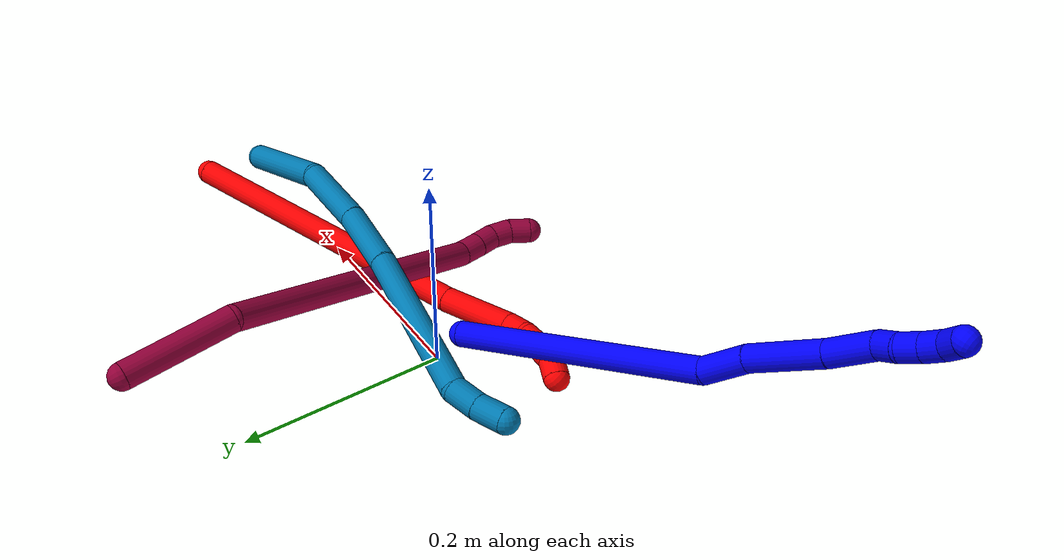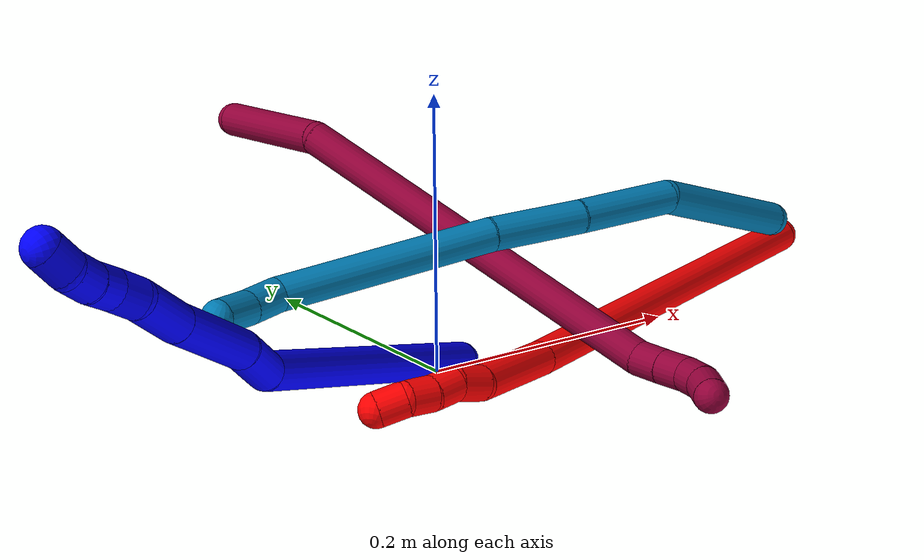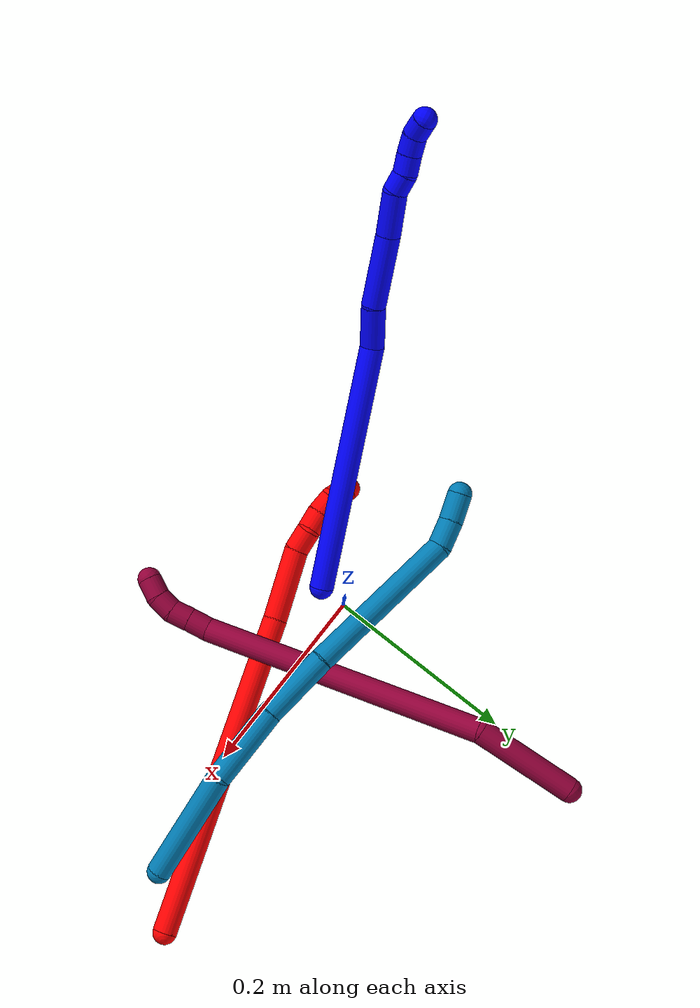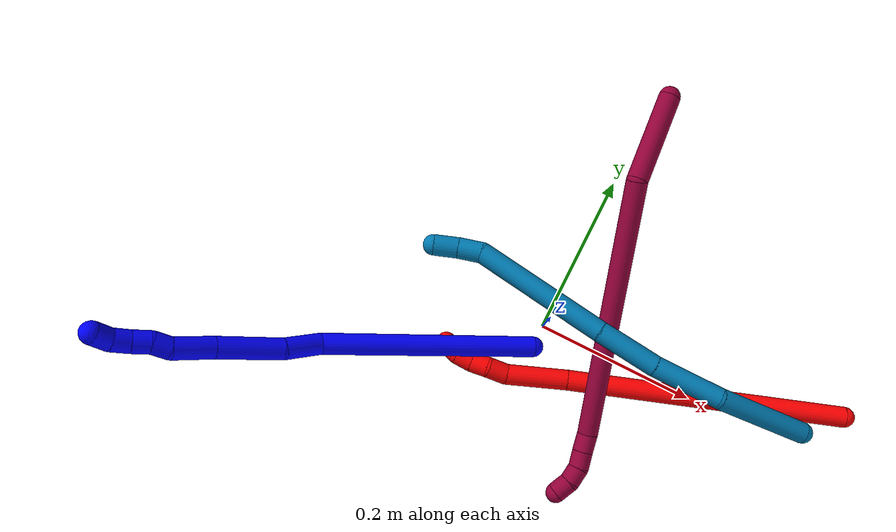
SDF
<sdf version="1.7">
 <world name="default">
  <model name="1">
   <static>0</static>
   <link name="1">
    <collision name="collision-cylinder-e_1_1_4">
     <pose>-0.043396 -0.037491 0.113755 0.318365 -0.347603 -0.056358</pose>
     <geometry><cylinder><radius>0.0125</radius><length>0.254785</length></cylinder></geometry>
     <surface>
      <friction><ode><mu>1.16</mu><mu2>1.16</mu2><slip1>0</slip1><slip2>0</slip2></ode></friction>
      <contact><ode><kp>1e+06</kp><kd>1</kd><max_vel>0</max_vel><min_depth>0.001</min_depth></ode></contact>
     </surface>
    </collision>
    <visual name="visual-cylinder-e_1_1_4">
     <pose>-0.043396 -0.037491 0.113755 0.318365 -0.347603 -0.056358</pose>
     <geometry><cylinder><radius>0.0125</radius><length>0.254785</length></cylinder></geometry>
     <material><ambient>0 0 1 1</ambient></material>
    </visual>
    <collision name="collision-cylinder-e_2_4_5">
     <pose>-0.098394 -0.08703 0.242344 0.682124 -0.545625 -0.197963</pose>
     <geometry><cylinder><radius>0.0125</radius><length>0.044715</length></cylinder></geometry>
     <surface>
      <friction><ode><mu>1.16</mu><mu2>1.16</mu2><slip1>0</slip1><slip2>0</slip2></ode></friction>
      <contact><ode><kp>1e+06</kp><kd>1</kd><max_vel>0</max_vel><min_depth>0.001</min_depth></ode></contact>
     </surface>
    </collision>
    <visual name="visual-cylinder-e_2_4_5">
     <pose>-0.098394 -0.08703 0.242344 0.682124 -0.545625 -0.197963</pose>
     <geometry><cylinder><radius>0.0125</radius><length>0.044715</length></cylinder></geometry>
     <material><ambient>0 0 1 1</ambient></material>
    </visual>
    <collision name="collision-cylinder-e_3_5_6">
     <pose>-0.123895 -0.117638 0.286466 0.564817 -0.381238 -0.111864</pose>
     <geometry><cylinder><radius>0.0125</radius><length>0.074709</length></cylinder></geometry>
     <surface>
      <friction><ode><mu>1.16</mu><mu2>1.16</mu2><slip1>0</slip1><slip2>0</slip2></ode></friction>
      <contact><ode><kp>1e+06</kp><kd>1</kd><max_vel>0</max_vel><min_depth>0.001</min_depth></ode></contact>
     </surface>
    </collision>
    <visual name="visual-cylinder-e_3_5_6">
     <pose>-0.123895 -0.117638 0.286466 0.564817 -0.381238 -0.111864</pose>
     <geometry><cylinder><radius>0.0125</radius><length>0.074709</length></cylinder></geometry>
     <material><ambient>0 0 1 1</ambient></material>
    </visual>
    <collision name="collision-cylinder-e_4_6_7">
     <pose>-0.147312 -0.148672 0.332248 0.647571 -0.431364 -0.146787</pose>
     <geometry><cylinder><radius>0.0125</radius><length>0.045533</length></cylinder></geometry>
     <surface>
      <friction><ode><mu>1.16</mu><mu2>1.16</mu2><slip1>0</slip1><slip2>0</slip2></ode></friction>
      <contact><ode><kp>1e+06</kp><kd>1</kd><max_vel>0</max_vel><min_depth>0.001</min_depth></ode></contact>
     </surface>
    </collision>
    <visual name="visual-cylinder-e_4_6_7">
     <pose>-0.147312 -0.148672 0.332248 0.647571 -0.431364 -0.146787</pose>
     <geometry><cylinder><radius>0.0125</radius><length>0.045533</length></cylinder></geometry>
     <material><ambient>0 0 1 1</ambient></material>
    </visual>
    <collision name="collision-cylinder-e_5_7_8">
     <pose>-0.157673 -0.166977 0.35689 0.621025 -0.083897 -0.026936</pose>
     <geometry><cylinder><radius>0.0125</radius><length>0.020108</length></cylinder></geometry>
     <surface>
      <friction><ode><mu>1.16</mu><mu2>1.16</mu2><slip1>0</slip1><slip2>0</slip2></ode></friction>
      <contact><ode><kp>1e+06</kp><kd>1</kd><max_vel>0</max_vel><min_depth>0.001</min_depth></ode></contact>
     </surface>
    </collision>
    <visual name="visual-cylinder-e_5_7_8">
     <pose>-0.157673 -0.166977 0.35689 0.621025 -0.083897 -0.026936</pose>
     <geometry><cylinder><radius>0.0125</radius><length>0.020108</length></cylinder></geometry>
     <material><ambient>0 0 1 1</ambient></material>
    </visual>
    <collision name="collision-cylinder-e_6_8_9">
     <pose>-0.16207 -0.177378 0.373217 0.509609 -0.362563 -0.095411</pose>
     <geometry><cylinder><radius>0.0125</radius><length>0.020044</length></cylinder></geometry>
     <surface>
      <friction><ode><mu>1.16</mu><mu2>1.16</mu2><slip1>0</slip1><slip2>0</slip2></ode></friction>
      <contact><ode><kp>1e+06</kp><kd>1</kd><max_vel>0</max_vel><min_depth>0.001</min_depth></ode></contact>
     </surface>
    </collision>
    <visual name="visual-cylinder-e_6_8_9">
     <pose>-0.16207 -0.177378 0.373217 0.509609 -0.362563 -0.095411</pose>
     <geometry><cylinder><radius>0.0125</radius><length>0.020044</length></cylinder></geometry>
     <material><ambient>0 0 1 1</ambient></material>
    </visual>
    <collision name="collision-cylinder-e_7_9_10">
     <pose>-0.168773 -0.187836 0.388905 0.664906 -0.318772 -0.110889</pose>
     <geometry><cylinder><radius>0.0125</radius><length>0.020093</length></cylinder></geometry>
     <surface>
      <friction><ode><mu>1.16</mu><mu2>1.16</mu2><slip1>0</slip1><slip2>0</slip2></ode></friction>
      <contact><ode><kp>1e+06</kp><kd>1</kd><max_vel>0</max_vel><min_depth>0.001</min_depth></ode></contact>
     </surface>
    </collision>
    <visual name="visual-cylinder-e_7_9_10">
     <pose>-0.168773 -0.187836 0.388905 0.664906 -0.318772 -0.110889</pose>
     <geometry><cylinder><radius>0.0125</radius><length>0.020093</length></cylinder></geometry>
     <material><ambient>0 0 1 1</ambient></material>
    </visual>
    <collision name="collision-cylinder-e_8_10_2">
     <pose>-0.17269 -0.201858 0.402188 0.953504 -0.076852 -0.039708</pose>
     <geometry><cylinder><radius>0.0125</radius><length>0.020014</length></cylinder></geometry>
     <surface>
      <friction><ode><mu>1.16</mu><mu2>1.16</mu2><slip1>0</slip1><slip2>0</slip2></ode></friction>
      <contact><ode><kp>1e+06</kp><kd>1</kd><max_vel>0</max_vel><min_depth>0.001</min_depth></ode></contact>
     </surface>
    </collision>
    <visual name="visual-cylinder-e_8_10_2">
     <pose>-0.17269 -0.201858 0.402188 0.953504 -0.076852 -0.039708</pose>
     <geometry><cylinder><radius>0.0125</radius><length>0.020014</length></cylinder></geometry>
     <material><ambient>0 0 1 1</ambient></material>
    </visual>
    <collision name="collision-sphere-2">
     <pose>-0.173458 -0.209994 0.407964 0 -0 0</pose>
     <geometry><sphere><radius>0.0125</radius></sphere></geometry>
     <surface>
      <friction><ode><mu>1.16</mu><mu2>1.16</mu2><slip1>0</slip1><slip2>0</slip2></ode></friction>
      <contact><ode><kp>1e+06</kp><kd>1</kd><max_vel>0</max_vel><min_depth>0.001</min_depth></ode></contact>
     </surface>
    </collision>
    <visual name="visual-sphere-2">
     <pose>-0.173458 -0.209994 0.407964 0 -0 0</pose>
     <geometry><sphere><radius>0.0125</radius></sphere></geometry>
     <material><ambient>0 0 1 1</ambient></material>
    </visual>
    <collision name="collision-sphere-10">
     <pose>-0.171922 -0.193722 0.396413 0 -0 0</pose>
     <geometry><sphere><radius>0.0125</radius></sphere></geometry>
     <surface>
      <friction><ode><mu>1.16</mu><mu2>1.16</mu2><slip1>0</slip1><slip2>0</slip2></ode></friction>
      <contact><ode><kp>1e+06</kp><kd>1</kd><max_vel>0</max_vel><min_depth>0.001</min_depth></ode></contact>
     </surface>
    </collision>
    <visual name="visual-sphere-10">
     <pose>-0.171922 -0.193722 0.396413 0 -0 0</pose>
     <geometry><sphere><radius>0.0125</radius></sphere></geometry>
     <material><ambient>0 0 1 1</ambient></material>
    </visual>
    <collision name="collision-sphere-9">
     <pose>-0.165625 -0.181949 0.381397 0 -0 0</pose>
     <geometry><sphere><radius>0.0125</radius></sphere></geometry>
     <surface>
      <friction><ode><mu>1.16</mu><mu2>1.16</mu2><slip1>0</slip1><slip2>0</slip2></ode></friction>
      <contact><ode><kp>1e+06</kp><kd>1</kd><max_vel>0</max_vel><min_depth>0.001</min_depth></ode></contact>
     </surface>
    </collision>
    <visual name="visual-sphere-9">
     <pose>-0.165625 -0.181949 0.381397 0 -0 0</pose>
     <geometry><sphere><radius>0.0125</radius></sphere></geometry>
     <material><ambient>0 0 1 1</ambient></material>
    </visual>
    <collision name="collision-sphere-4">
     <pose>-0.086791 -0.074982 0.227509 0 -0 0</pose>
     <geometry><sphere><radius>0.0125</radius></sphere></geometry>
     <surface>
      <friction><ode><mu>1.16</mu><mu2>1.16</mu2><slip1>0</slip1><slip2>0</slip2></ode></friction>
      <contact><ode><kp>1e+06</kp><kd>1</kd><max_vel>0</max_vel><min_depth>0.001</min_depth></ode></contact>
     </surface>
    </collision>
    <visual name="visual-sphere-4">
     <pose>-0.086791 -0.074982 0.227509 0 -0 0</pose>
     <geometry><sphere><radius>0.0125</radius></sphere></geometry>
     <material><ambient>0 0 1 1</ambient></material>
    </visual>
    <collision name="collision-sphere-1">
     <geometry><sphere><radius>0.0125</radius></sphere></geometry>
     <surface>
      <friction><ode><mu>1.16</mu><mu2>1.16</mu2><slip1>0</slip1><slip2>0</slip2></ode></friction>
      <contact><ode><kp>1e+06</kp><kd>1</kd><max_vel>0</max_vel><min_depth>0.001</min_depth></ode></contact>
     </surface>
    </collision>
    <visual name="visual-sphere-1">
     <geometry><sphere><radius>0.0125</radius></sphere></geometry>
     <material><ambient>0 0 1 1</ambient></material>
    </visual>
    <collision name="collision-sphere-8">
     <pose>-0.158516 -0.172807 0.365038 0 -0 0</pose>
     <geometry><sphere><radius>0.0125</radius></sphere></geometry>
     <surface>
      <friction><ode><mu>1.16</mu><mu2>1.16</mu2><slip1>0</slip1><slip2>0</slip2></ode></friction>
      <contact><ode><kp>1e+06</kp><kd>1</kd><max_vel>0</max_vel><min_depth>0.001</min_depth></ode></contact>
     </surface>
    </collision>
    <visual name="visual-sphere-8">
     <pose>-0.158516 -0.172807 0.365038 0 -0 0</pose>
     <geometry><sphere><radius>0.0125</radius></sphere></geometry>
     <material><ambient>0 0 1 1</ambient></material>
    </visual>
    <collision name="collision-sphere-5">
     <pose>-0.109996 -0.099079 0.257179 0 -0 0</pose>
     <geometry><sphere><radius>0.0125</radius></sphere></geometry>
     <surface>
      <friction><ode><mu>1.16</mu><mu2>1.16</mu2><slip1>0</slip1><slip2>0</slip2></ode></friction>
      <contact><ode><kp>1e+06</kp><kd>1</kd><max_vel>0</max_vel><min_depth>0.001</min_depth></ode></contact>
     </surface>
    </collision>
    <visual name="visual-sphere-5">
     <pose>-0.109996 -0.099079 0.257179 0 -0 0</pose>
     <geometry><sphere><radius>0.0125</radius></sphere></geometry>
     <material><ambient>0 0 1 1</ambient></material>
    </visual>
    <collision name="collision-sphere-6">
     <pose>-0.137793 -0.136196 0.315754 0 -0 0</pose>
     <geometry><sphere><radius>0.0125</radius></sphere></geometry>
     <surface>
      <friction><ode><mu>1.16</mu><mu2>1.16</mu2><slip1>0</slip1><slip2>0</slip2></ode></friction>
      <contact><ode><kp>1e+06</kp><kd>1</kd><max_vel>0</max_vel><min_depth>0.001</min_depth></ode></contact>
     </surface>
    </collision>
    <visual name="visual-sphere-6">
     <pose>-0.137793 -0.136196 0.315754 0 -0 0</pose>
     <geometry><sphere><radius>0.0125</radius></sphere></geometry>
     <material><ambient>0 0 1 1</ambient></material>
    </visual>
    <collision name="collision-sphere-7">
     <pose>-0.156831 -0.161148 0.348742 0 -0 0</pose>
     <geometry><sphere><radius>0.0125</radius></sphere></geometry>
     <surface>
      <friction><ode><mu>1.16</mu><mu2>1.16</mu2><slip1>0</slip1><slip2>0</slip2></ode></friction>
      <contact><ode><kp>1e+06</kp><kd>1</kd><max_vel>0</max_vel><min_depth>0.001</min_depth></ode></contact>
     </surface>
    </collision>
    <visual name="visual-sphere-7">
     <pose>-0.156831 -0.161148 0.348742 0 -0 0</pose>
     <geometry><sphere><radius>0.0125</radius></sphere></geometry>
     <material><ambient>0 0 1 1</ambient></material>
    </visual>
    <inertial>
     <pose>-0.089372 -0.087457 0.213739 0 -0 0</pose>
     <mass>0.5</mass>
     <inertia><ixx>0.001266</ixx><ixy>0</ixy><ixz>0</ixz><iyy>0.00128</iyy><iyz>0</iyz><izz>0.00097</izz></inertia>
    </inertial>
   </link>
   <pose>0.000179 -0.028524 0.017077 -1.68336 0.275795 1.73625</pose>
  </model>
  <model name="2">
   <static>0</static>
   <link name="2">
    <collision name="collision-cylinder-e_1_1_4">
     <pose>-0.118932 -0.030926 -0.116612 2.88236 -0.778257 -2.52601</pose>
     <geometry><cylinder><radius>0.0125</radius><length>0.338819</length></cylinder></geometry>
     <surface>
      <friction><ode><mu>1.16</mu><mu2>1.16</mu2><slip1>0</slip1><slip2>0</slip2></ode></friction>
      <contact><ode><kp>1e+06</kp><kd>1</kd><max_vel>0</max_vel><min_depth>0.001</min_depth></ode></contact>
     </surface>
    </collision>
    <visual name="visual-cylinder-e_1_1_4">
     <pose>-0.118932 -0.030926 -0.116612 2.88236 -0.778257 -2.52601</pose>
     <geometry><cylinder><radius>0.0125</radius><length>0.338819</length></cylinder></geometry>
     <material><ambient>1 0 0 1</ambient></material>
    </visual>
    <collision name="collision-cylinder-e_2_4_5">
     <pose>-0.265172 -0.071281 -0.257255 2.76765 -0.813494 -2.31397</pose>
     <geometry><cylinder><radius>0.0125</radius><length>0.075159</length></cylinder></geometry>
     <surface>
      <friction><ode><mu>1.16</mu><mu2>1.16</mu2><slip1>0</slip1><slip2>0</slip2></ode></friction>
      <contact><ode><kp>1e+06</kp><kd>1</kd><max_vel>0</max_vel><min_depth>0.001</min_depth></ode></contact>
     </surface>
    </collision>
    <visual name="visual-cylinder-e_2_4_5">
     <pose>-0.265172 -0.071281 -0.257255 2.76765 -0.813494 -2.31397</pose>
     <geometry><cylinder><radius>0.0125</radius><length>0.075159</length></cylinder></geometry>
     <material><ambient>1 0 0 1</ambient></material>
    </visual>
    <collision name="collision-cylinder-e_3_5_6">
     <pose>-0.303355 -0.081715 -0.286596 2.9548 -1.10964 -2.84158</pose>
     <geometry><cylinder><radius>0.0125</radius><length>0.024284</length></cylinder></geometry>
     <surface>
      <friction><ode><mu>1.16</mu><mu2>1.16</mu2><slip1>0</slip1><slip2>0</slip2></ode></friction>
      <contact><ode><kp>1e+06</kp><kd>1</kd><max_vel>0</max_vel><min_depth>0.001</min_depth></ode></contact>
     </surface>
    </collision>
    <visual name="visual-cylinder-e_3_5_6">
     <pose>-0.303355 -0.081715 -0.286596 2.9548 -1.10964 -2.84158</pose>
     <geometry><cylinder><radius>0.0125</radius><length>0.024284</length></cylinder></geometry>
     <material><ambient>1 0 0 1</ambient></material>
    </visual>
    <collision name="collision-cylinder-e_4_6_7">
     <pose>-0.321776 -0.082399 -0.298985 -3.09657 -0.81689 3.03763</pose>
     <geometry><cylinder><radius>0.0125</radius><length>0.020707</length></cylinder></geometry>
     <surface>
      <friction><ode><mu>1.16</mu><mu2>1.16</mu2><slip1>0</slip1><slip2>0</slip2></ode></friction>
      <contact><ode><kp>1e+06</kp><kd>1</kd><max_vel>0</max_vel><min_depth>0.001</min_depth></ode></contact>
     </surface>
    </collision>
    <visual name="visual-cylinder-e_4_6_7">
     <pose>-0.321776 -0.082399 -0.298985 -3.09657 -0.81689 3.03763</pose>
     <geometry><cylinder><radius>0.0125</radius><length>0.020707</length></cylinder></geometry>
     <material><ambient>1 0 0 1</ambient></material>
    </visual>
    <collision name="collision-cylinder-e_5_7_8">
     <pose>-0.337755 -0.080874 -0.31151 -2.92357 -0.986304 2.73981</pose>
     <geometry><cylinder><radius>0.0125</radius><length>0.020218</length></cylinder></geometry>
     <surface>
      <friction><ode><mu>1.16</mu><mu2>1.16</mu2><slip1>0</slip1><slip2>0</slip2></ode></friction>
      <contact><ode><kp>1e+06</kp><kd>1</kd><max_vel>0</max_vel><min_depth>0.001</min_depth></ode></contact>
     </surface>
    </collision>
    <visual name="visual-cylinder-e_5_7_8">
     <pose>-0.337755 -0.080874 -0.31151 -2.92357 -0.986304 2.73981</pose>
     <geometry><cylinder><radius>0.0125</radius><length>0.020218</length></cylinder></geometry>
     <material><ambient>1 0 0 1</ambient></material>
    </visual>
    <collision name="collision-cylinder-e_6_8_2">
     <pose>-0.352913 -0.074376 -0.322876 -2.41225 -0.702916 1.53055</pose>
     <geometry><cylinder><radius>0.0125</radius><length>0.020814</length></cylinder></geometry>
     <surface>
      <friction><ode><mu>1.16</mu><mu2>1.16</mu2><slip1>0</slip1><slip2>0</slip2></ode></friction>
      <contact><ode><kp>1e+06</kp><kd>1</kd><max_vel>0</max_vel><min_depth>0.001</min_depth></ode></contact>
     </surface>
    </collision>
    <visual name="visual-cylinder-e_6_8_2">
     <pose>-0.352913 -0.074376 -0.322876 -2.41225 -0.702916 1.53055</pose>
     <geometry><cylinder><radius>0.0125</radius><length>0.020814</length></cylinder></geometry>
     <material><ambient>1 0 0 1</ambient></material>
    </visual>
    <collision name="collision-sphere-2">
     <pose>-0.359641 -0.069085 -0.328796 0 -0 0</pose>
     <geometry><sphere><radius>0.0125</radius></sphere></geometry>
     <surface>
      <friction><ode><mu>1.16</mu><mu2>1.16</mu2><slip1>0</slip1><slip2>0</slip2></ode></friction>
      <contact><ode><kp>1e+06</kp><kd>1</kd><max_vel>0</max_vel><min_depth>0.001</min_depth></ode></contact>
     </surface>
    </collision>
    <visual name="visual-sphere-2">
     <pose>-0.359641 -0.069085 -0.328796 0 -0 0</pose>
     <geometry><sphere><radius>0.0125</radius></sphere></geometry>
     <material><ambient>1 0 0 1</ambient></material>
    </visual>
    <collision name="collision-sphere-4">
     <pose>-0.237864 -0.061851 -0.233224 0 -0 0</pose>
     <geometry><sphere><radius>0.0125</radius></sphere></geometry>
     <surface>
      <friction><ode><mu>1.16</mu><mu2>1.16</mu2><slip1>0</slip1><slip2>0</slip2></ode></friction>
      <contact><ode><kp>1e+06</kp><kd>1</kd><max_vel>0</max_vel><min_depth>0.001</min_depth></ode></contact>
     </surface>
    </collision>
    <visual name="visual-sphere-4">
     <pose>-0.237864 -0.061851 -0.233224 0 -0 0</pose>
     <geometry><sphere><radius>0.0125</radius></sphere></geometry>
     <material><ambient>1 0 0 1</ambient></material>
    </visual>
    <collision name="collision-sphere-1">
     <geometry><sphere><radius>0.0125</radius></sphere></geometry>
     <surface>
      <friction><ode><mu>1.16</mu><mu2>1.16</mu2><slip1>0</slip1><slip2>0</slip2></ode></friction>
      <contact><ode><kp>1e+06</kp><kd>1</kd><max_vel>0</max_vel><min_depth>0.001</min_depth></ode></contact>
     </surface>
    </collision>
    <visual name="visual-sphere-1">
     <geometry><sphere><radius>0.0125</radius></sphere></geometry>
     <material><ambient>1 0 0 1</ambient></material>
    </visual>
    <collision name="collision-sphere-8">
     <pose>-0.346186 -0.079667 -0.316956 0 -0 0</pose>
     <geometry><sphere><radius>0.0125</radius></sphere></geometry>
     <surface>
      <friction><ode><mu>1.16</mu><mu2>1.16</mu2><slip1>0</slip1><slip2>0</slip2></ode></friction>
      <contact><ode><kp>1e+06</kp><kd>1</kd><max_vel>0</max_vel><min_depth>0.001</min_depth></ode></contact>
     </surface>
    </collision>
    <visual name="visual-sphere-8">
     <pose>-0.346186 -0.079667 -0.316956 0 -0 0</pose>
     <geometry><sphere><radius>0.0125</radius></sphere></geometry>
     <material><ambient>1 0 0 1</ambient></material>
    </visual>
    <collision name="collision-sphere-5">
     <pose>-0.292481 -0.080711 -0.281287 0 -0 0</pose>
     <geometry><sphere><radius>0.0125</radius></sphere></geometry>
     <surface>
      <friction><ode><mu>1.16</mu><mu2>1.16</mu2><slip1>0</slip1><slip2>0</slip2></ode></friction>
      <contact><ode><kp>1e+06</kp><kd>1</kd><max_vel>0</max_vel><min_depth>0.001</min_depth></ode></contact>
     </surface>
    </collision>
    <visual name="visual-sphere-5">
     <pose>-0.292481 -0.080711 -0.281287 0 -0 0</pose>
     <geometry><sphere><radius>0.0125</radius></sphere></geometry>
     <material><ambient>1 0 0 1</ambient></material>
    </visual>
    <collision name="collision-sphere-6">
     <pose>-0.314228 -0.082718 -0.291905 0 -0 0</pose>
     <geometry><sphere><radius>0.0125</radius></sphere></geometry>
     <surface>
      <friction><ode><mu>1.16</mu><mu2>1.16</mu2><slip1>0</slip1><slip2>0</slip2></ode></friction>
      <contact><ode><kp>1e+06</kp><kd>1</kd><max_vel>0</max_vel><min_depth>0.001</min_depth></ode></contact>
     </surface>
    </collision>
    <visual name="visual-sphere-6">
     <pose>-0.314228 -0.082718 -0.291905 0 -0 0</pose>
     <geometry><sphere><radius>0.0125</radius></sphere></geometry>
     <material><ambient>1 0 0 1</ambient></material>
    </visual>
    <collision name="collision-sphere-7">
     <pose>-0.329324 -0.08208 -0.306064 0 -0 0</pose>
     <geometry><sphere><radius>0.0125</radius></sphere></geometry>
     <surface>
      <friction><ode><mu>1.16</mu><mu2>1.16</mu2><slip1>0</slip1><slip2>0</slip2></ode></friction>
      <contact><ode><kp>1e+06</kp><kd>1</kd><max_vel>0</max_vel><min_depth>0.001</min_depth></ode></contact>
     </surface>
    </collision>
    <visual name="visual-sphere-7">
     <pose>-0.329324 -0.08208 -0.306064 0 -0 0</pose>
     <geometry><sphere><radius>0.0125</radius></sphere></geometry>
     <material><ambient>1 0 0 1</ambient></material>
    </visual>
    <inertial>
     <pose>-0.17686 -0.045419 -0.170029 0 -0 0</pose>
     <mass>0.5</mass>
     <inertia>
      <ixx>-0.003297</ixx>
      <ixy>0</ixy>
      <ixz>0</ixz>
      <iyy>0.001582</iyy>
      <iyz>0</iyz>
      <izz>0.002895</izz>
     </inertia>
    </inertial>
   </link>
   <pose>0.376282 0.063618 0.015888 -0.56895 0.585964 -0.222635</pose>
  </model>
  <model name="8">
   <static>0</static>
   <link name="8">
    <collision name="collision-cylinder-e_1_1_4">
     <pose>0.003605 -0.020676 -0.047669 2.73235 0.069266 0.330856</pose>
     <geometry><cylinder><radius>0.0125</radius><length>0.10417</length></cylinder></geometry>
     <surface>
      <friction><ode><mu>1.16</mu><mu2>1.16</mu2><slip1>0</slip1><slip2>0</slip2></ode></friction>
      <contact><ode><kp>1e+06</kp><kd>1</kd><max_vel>0</max_vel><min_depth>0.001</min_depth></ode></contact>
     </surface>
    </collision>
    <visual name="visual-cylinder-e_1_1_4">
     <pose>0.003605 -0.020676 -0.047669 2.73235 0.069266 0.330856</pose>
     <geometry><cylinder><radius>0.0125</radius><length>0.10417</length></cylinder></geometry>
     <material><ambient>0.584314 0 0.227451 1</ambient></material>
    </visual>
    <collision name="collision-cylinder-e_2_4_5">
     <pose>0.054404 -0.150887 -0.195565 2.31184 0.307771 0.677219</pose>
     <geometry><cylinder><radius>0.0125</radius><length>0.311582</length></cylinder></geometry>
     <surface>
      <friction><ode><mu>1.16</mu><mu2>1.16</mu2><slip1>0</slip1><slip2>0</slip2></ode></friction>
      <contact><ode><kp>1e+06</kp><kd>1</kd><max_vel>0</max_vel><min_depth>0.001</min_depth></ode></contact>
     </surface>
    </collision>
    <visual name="visual-cylinder-e_2_4_5">
     <pose>0.054404 -0.150887 -0.195565 2.31184 0.307771 0.677219</pose>
     <geometry><cylinder><radius>0.0125</radius><length>0.311582</length></cylinder></geometry>
     <material><ambient>0.584314 0 0.227451 1</ambient></material>
    </visual>
    <collision name="collision-cylinder-e_3_5_6">
     <pose>0.102768 -0.266317 -0.30547 2.59468 0.102827 0.362899</pose>
     <geometry><cylinder><radius>0.0125</radius><length>0.022786</length></cylinder></geometry>
     <surface>
      <friction><ode><mu>1.16</mu><mu2>1.16</mu2><slip1>0</slip1><slip2>0</slip2></ode></friction>
      <contact><ode><kp>1e+06</kp><kd>1</kd><max_vel>0</max_vel><min_depth>0.001</min_depth></ode></contact>
     </surface>
    </collision>
    <visual name="visual-cylinder-e_3_5_6">
     <pose>0.102768 -0.266317 -0.30547 2.59468 0.102827 0.362899</pose>
     <geometry><cylinder><radius>0.0125</radius><length>0.022786</length></cylinder></geometry>
     <material><ambient>0.584314 0 0.227451 1</ambient></material>
    </visual>
    <collision name="collision-cylinder-e_4_6_7">
     <pose>0.104748 -0.277762 -0.323795 2.57083 0.078742 0.266931</pose>
     <geometry><cylinder><radius>0.0125</radius><length>0.020611</length></cylinder></geometry>
     <surface>
      <friction><ode><mu>1.16</mu><mu2>1.16</mu2><slip1>0</slip1><slip2>0</slip2></ode></friction>
      <contact><ode><kp>1e+06</kp><kd>1</kd><max_vel>0</max_vel><min_depth>0.001</min_depth></ode></contact>
     </surface>
    </collision>
    <visual name="visual-cylinder-e_4_6_7">
     <pose>0.104748 -0.277762 -0.323795 2.57083 0.078742 0.266931</pose>
     <geometry><cylinder><radius>0.0125</radius><length>0.020611</length></cylinder></geometry>
     <material><ambient>0.584314 0 0.227451 1</ambient></material>
    </visual>
    <collision name="collision-cylinder-e_5_7_8">
     <pose>0.107713 -0.28577 -0.341898 2.88736 0.216916 1.41125</pose>
     <geometry><cylinder><radius>0.0125</radius><length>0.020013</length></cylinder></geometry>
     <surface>
      <friction><ode><mu>1.16</mu><mu2>1.16</mu2><slip1>0</slip1><slip2>0</slip2></ode></friction>
      <contact><ode><kp>1e+06</kp><kd>1</kd><max_vel>0</max_vel><min_depth>0.001</min_depth></ode></contact>
     </surface>
    </collision>
    <visual name="visual-cylinder-e_5_7_8">
     <pose>0.107713 -0.28577 -0.341898 2.88736 0.216916 1.41125</pose>
     <geometry><cylinder><radius>0.0125</radius><length>0.020013</length></cylinder></geometry>
     <material><ambient>0.584314 0 0.227451 1</ambient></material>
    </visual>
    <collision name="collision-cylinder-e_6_8_2">
     <pose>0.114242 -0.288195 -0.360812 -3.13815 0.433406 -3.12594</pose>
     <geometry><cylinder><radius>0.0125</radius><length>0.020838</length></cylinder></geometry>
     <surface>
      <friction><ode><mu>1.16</mu><mu2>1.16</mu2><slip1>0</slip1><slip2>0</slip2></ode></friction>
      <contact><ode><kp>1e+06</kp><kd>1</kd><max_vel>0</max_vel><min_depth>0.001</min_depth></ode></contact>
     </surface>
    </collision>
    <visual name="visual-cylinder-e_6_8_2">
     <pose>0.114242 -0.288195 -0.360812 -3.13815 0.433406 -3.12594</pose>
     <geometry><cylinder><radius>0.0125</radius><length>0.020838</length></cylinder></geometry>
     <material><ambient>0.584314 0 0.227451 1</ambient></material>
    </visual>
    <collision name="collision-sphere-2">
     <pose>0.118618 -0.288162 -0.370268 0 -0 0</pose>
     <geometry><sphere><radius>0.0125</radius></sphere></geometry>
     <surface>
      <friction><ode><mu>1.16</mu><mu2>1.16</mu2><slip1>0</slip1><slip2>0</slip2></ode></friction>
      <contact><ode><kp>1e+06</kp><kd>1</kd><max_vel>0</max_vel><min_depth>0.001</min_depth></ode></contact>
     </surface>
    </collision>
    <visual name="visual-sphere-2">
     <pose>0.118618 -0.288162 -0.370268 0 -0 0</pose>
     <geometry><sphere><radius>0.0125</radius></sphere></geometry>
     <material><ambient>0.584314 0 0.227451 1</ambient></material>
    </visual>
    <collision name="collision-sphere-4">
     <pose>0.00721 -0.041351 -0.095339 0 -0 0</pose>
     <geometry><sphere><radius>0.0125</radius></sphere></geometry>
     <surface>
      <friction><ode><mu>1.16</mu><mu2>1.16</mu2><slip1>0</slip1><slip2>0</slip2></ode></friction>
      <contact><ode><kp>1e+06</kp><kd>1</kd><max_vel>0</max_vel><min_depth>0.001</min_depth></ode></contact>
     </surface>
    </collision>
    <visual name="visual-sphere-4">
     <pose>0.00721 -0.041351 -0.095339 0 -0 0</pose>
     <geometry><sphere><radius>0.0125</radius></sphere></geometry>
     <material><ambient>0.584314 0 0.227451 1</ambient></material>
    </visual>
    <collision name="collision-sphere-1">
     <geometry><sphere><radius>0.0125</radius></sphere></geometry>
     <surface>
      <friction><ode><mu>1.16</mu><mu2>1.16</mu2><slip1>0</slip1><slip2>0</slip2></ode></friction>
      <contact><ode><kp>1e+06</kp><kd>1</kd><max_vel>0</max_vel><min_depth>0.001</min_depth></ode></contact>
     </surface>
    </collision>
    <visual name="visual-sphere-1">
     <geometry><sphere><radius>0.0125</radius></sphere></geometry>
     <material><ambient>0.584314 0 0.227451 1</ambient></material>
    </visual>
    <collision name="collision-sphere-8">
     <pose>0.109866 -0.288228 -0.351356 0 -0 0</pose>
     <geometry><sphere><radius>0.0125</radius></sphere></geometry>
     <surface>
      <friction><ode><mu>1.16</mu><mu2>1.16</mu2><slip1>0</slip1><slip2>0</slip2></ode></friction>
      <contact><ode><kp>1e+06</kp><kd>1</kd><max_vel>0</max_vel><min_depth>0.001</min_depth></ode></contact>
     </surface>
    </collision>
    <visual name="visual-sphere-8">
     <pose>0.109866 -0.288228 -0.351356 0 -0 0</pose>
     <geometry><sphere><radius>0.0125</radius></sphere></geometry>
     <material><ambient>0.584314 0 0.227451 1</ambient></material>
    </visual>
    <collision name="collision-sphere-5">
     <pose>0.101599 -0.260424 -0.295791 0 -0 0</pose>
     <geometry><sphere><radius>0.0125</radius></sphere></geometry>
     <surface>
      <friction><ode><mu>1.16</mu><mu2>1.16</mu2><slip1>0</slip1><slip2>0</slip2></ode></friction>
      <contact><ode><kp>1e+06</kp><kd>1</kd><max_vel>0</max_vel><min_depth>0.001</min_depth></ode></contact>
     </surface>
    </collision>
    <visual name="visual-sphere-5">
     <pose>0.101599 -0.260424 -0.295791 0 -0 0</pose>
     <geometry><sphere><radius>0.0125</radius></sphere></geometry>
     <material><ambient>0.584314 0 0.227451 1</ambient></material>
    </visual>
    <collision name="collision-sphere-6">
     <pose>0.103938 -0.272211 -0.31515 0 -0 0</pose>
     <geometry><sphere><radius>0.0125</radius></sphere></geometry>
     <surface>
      <friction><ode><mu>1.16</mu><mu2>1.16</mu2><slip1>0</slip1><slip2>0</slip2></ode></friction>
      <contact><ode><kp>1e+06</kp><kd>1</kd><max_vel>0</max_vel><min_depth>0.001</min_depth></ode></contact>
     </surface>
    </collision>
    <visual name="visual-sphere-6">
     <pose>0.103938 -0.272211 -0.31515 0 -0 0</pose>
     <geometry><sphere><radius>0.0125</radius></sphere></geometry>
     <material><ambient>0.584314 0 0.227451 1</ambient></material>
    </visual>
    <collision name="collision-sphere-7">
     <pose>0.105559 -0.283312 -0.332441 0 -0 0</pose>
     <geometry><sphere><radius>0.0125</radius></sphere></geometry>
     <surface>
      <friction><ode><mu>1.16</mu><mu2>1.16</mu2><slip1>0</slip1><slip2>0</slip2></ode></friction>
      <contact><ode><kp>1e+06</kp><kd>1</kd><max_vel>0</max_vel><min_depth>0.001</min_depth></ode></contact>
     </surface>
    </collision>
    <visual name="visual-sphere-7">
     <pose>0.105559 -0.283312 -0.332441 0 -0 0</pose>
     <geometry><sphere><radius>0.0125</radius></sphere></geometry>
     <material><ambient>0.584314 0 0.227451 1</ambient></material>
    </visual>
    <inertial>
     <pose>0.052728 -0.145371 -0.187791 0 -0 0</pose>
     <mass>0.5</mass>
     <inertia>
      <ixx>0.003532</ixx>
      <ixy>0</ixy>
      <ixz>0</ixz>
      <iyy>0.000461</iyy>
      <iyz>0</iyz>
      <izz>0.001018</izz>
     </inertia>
    </inertial>
   </link>
   <pose>0.011493 0.288517 0.120399 2.1951 0.995143 -2.83879</pose>
  </model>
  <model name="9">
   <static>0</static>
   <link name="9">
    <collision name="collision-cylinder-e_1_1_4">
     <pose>-0.045368 0.039355 -0.001416 -1.60675 -0.855936 0.883414</pose>
     <geometry><cylinder><radius>0.0125</radius><length>0.120151</length></cylinder></geometry>
     <surface>
      <friction><ode><mu>1.16</mu><mu2>1.16</mu2><slip1>0</slip1><slip2>0</slip2></ode></friction>
      <contact><ode><kp>1e+06</kp><kd>1</kd><max_vel>0</max_vel><min_depth>0.001</min_depth></ode></contact>
     </surface>
    </collision>
    <visual name="visual-cylinder-e_1_1_4">
     <pose>-0.045368 0.039355 -0.001416 -1.60675 -0.855936 0.883414</pose>
     <geometry><cylinder><radius>0.0125</radius><length>0.120151</length></cylinder></geometry>
     <material><ambient>0 0.490196 0.709804 1</ambient></material>
    </visual>
    <collision name="collision-cylinder-e_2_4_5">
     <pose>-0.120806 0.102761 0.010527 -1.06379 -0.829792 0.507236</pose>
     <geometry><cylinder><radius>0.0125</radius><length>0.081514</length></cylinder></geometry>
     <surface>
      <friction><ode><mu>1.16</mu><mu2>1.16</mu2><slip1>0</slip1><slip2>0</slip2></ode></friction>
      <contact><ode><kp>1e+06</kp><kd>1</kd><max_vel>0</max_vel><min_depth>0.001</min_depth></ode></contact>
     </surface>
    </collision>
    <visual name="visual-cylinder-e_2_4_5">
     <pose>-0.120806 0.102761 0.010527 -1.06379 -0.829792 0.507236</pose>
     <geometry><cylinder><radius>0.0125</radius><length>0.081514</length></cylinder></geometry>
     <material><ambient>0 0.490196 0.709804 1</ambient></material>
    </visual>
    <collision name="collision-cylinder-e_3_5_6">
     <pose>-0.179968 0.145382 0.036956 -0.957522 -0.908026 0.496159</pose>
     <geometry><cylinder><radius>0.0125</radius><length>0.07381</length></cylinder></geometry>
     <surface>
      <friction><ode><mu>1.16</mu><mu2>1.16</mu2><slip1>0</slip1><slip2>0</slip2></ode></friction>
      <contact><ode><kp>1e+06</kp><kd>1</kd><max_vel>0</max_vel><min_depth>0.001</min_depth></ode></contact>
     </surface>
    </collision>
    <visual name="visual-cylinder-e_3_5_6">
     <pose>-0.179968 0.145382 0.036956 -0.957522 -0.908026 0.496159</pose>
     <geometry><cylinder><radius>0.0125</radius><length>0.07381</length></cylinder></geometry>
     <material><ambient>0 0.490196 0.709804 1</ambient></material>
    </visual>
    <collision name="collision-cylinder-e_4_6_7">
     <pose>-0.273085 0.202305 0.086289 -0.813406 -0.881345 0.400801</pose>
     <geometry><cylinder><radius>0.0125</radius><length>0.165955</length></cylinder></geometry>
     <surface>
      <friction><ode><mu>1.16</mu><mu2>1.16</mu2><slip1>0</slip1><slip2>0</slip2></ode></friction>
      <contact><ode><kp>1e+06</kp><kd>1</kd><max_vel>0</max_vel><min_depth>0.001</min_depth></ode></contact>
     </surface>
    </collision>
    <visual name="visual-cylinder-e_4_6_7">
     <pose>-0.273085 0.202305 0.086289 -0.813406 -0.881345 0.400801</pose>
     <geometry><cylinder><radius>0.0125</radius><length>0.165955</length></cylinder></geometry>
     <material><ambient>0 0.490196 0.709804 1</ambient></material>
    </visual>
    <collision name="collision-cylinder-e_5_7_8">
     <pose>-0.345066 0.251751 0.127443 -1.15549 -0.580766 0.384826</pose>
     <geometry><cylinder><radius>0.0125</radius><length>0.029</length></cylinder></geometry>
     <surface>
      <friction><ode><mu>1.16</mu><mu2>1.16</mu2><slip1>0</slip1><slip2>0</slip2></ode></friction>
      <contact><ode><kp>1e+06</kp><kd>1</kd><max_vel>0</max_vel><min_depth>0.001</min_depth></ode></contact>
     </surface>
    </collision>
    <visual name="visual-cylinder-e_5_7_8">
     <pose>-0.345066 0.251751 0.127443 -1.15549 -0.580766 0.384826</pose>
     <geometry><cylinder><radius>0.0125</radius><length>0.029</length></cylinder></geometry>
     <material><ambient>0 0.490196 0.709804 1</ambient></material>
    </visual>
    <collision name="collision-cylinder-e_6_8_2">
     <pose>-0.360695 0.275131 0.135289 -1.33483 -0.545643 0.434046</pose>
     <geometry><cylinder><radius>0.0125</radius><length>0.029569</length></cylinder></geometry>
     <surface>
      <friction><ode><mu>1.16</mu><mu2>1.16</mu2><slip1>0</slip1><slip2>0</slip2></ode></friction>
      <contact><ode><kp>1e+06</kp><kd>1</kd><max_vel>0</max_vel><min_depth>0.001</min_depth></ode></contact>
     </surface>
    </collision>
    <visual name="visual-cylinder-e_6_8_2">
     <pose>-0.360695 0.275131 0.135289 -1.33483 -0.545643 0.434046</pose>
     <geometry><cylinder><radius>0.0125</radius><length>0.029569</length></cylinder></geometry>
     <material><ambient>0 0.490196 0.709804 1</ambient></material>
    </visual>
    <collision name="collision-sphere-2">
     <pose>-0.368368 0.287419 0.138244 0 -0 0</pose>
     <geometry><sphere><radius>0.0125</radius></sphere></geometry>
     <surface>
      <friction><ode><mu>1.16</mu><mu2>1.16</mu2><slip1>0</slip1><slip2>0</slip2></ode></friction>
      <contact><ode><kp>1e+06</kp><kd>1</kd><max_vel>0</max_vel><min_depth>0.001</min_depth></ode></contact>
     </surface>
    </collision>
    <visual name="visual-sphere-2">
     <pose>-0.368368 0.287419 0.138244 0 -0 0</pose>
     <geometry><sphere><radius>0.0125</radius></sphere></geometry>
     <material><ambient>0 0.490196 0.709804 1</ambient></material>
    </visual>
    <collision name="collision-sphere-4">
     <pose>-0.090736 0.078709 -0.002831 0 -0 0</pose>
     <geometry><sphere><radius>0.0125</radius></sphere></geometry>
     <surface>
      <friction><ode><mu>1.16</mu><mu2>1.16</mu2><slip1>0</slip1><slip2>0</slip2></ode></friction>
      <contact><ode><kp>1e+06</kp><kd>1</kd><max_vel>0</max_vel><min_depth>0.001</min_depth></ode></contact>
     </surface>
    </collision>
    <visual name="visual-sphere-4">
     <pose>-0.090736 0.078709 -0.002831 0 -0 0</pose>
     <geometry><sphere><radius>0.0125</radius></sphere></geometry>
     <material><ambient>0 0.490196 0.709804 1</ambient></material>
    </visual>
    <collision name="collision-sphere-1">
     <geometry><sphere><radius>0.0125</radius></sphere></geometry>
     <surface>
      <friction><ode><mu>1.16</mu><mu2>1.16</mu2><slip1>0</slip1><slip2>0</slip2></ode></friction>
      <contact><ode><kp>1e+06</kp><kd>1</kd><max_vel>0</max_vel><min_depth>0.001</min_depth></ode></contact>
     </surface>
    </collision>
    <visual name="visual-sphere-1">
     <geometry><sphere><radius>0.0125</radius></sphere></geometry>
     <material><ambient>0 0.490196 0.709804 1</ambient></material>
    </visual>
    <collision name="collision-sphere-8">
     <pose>-0.353022 0.262844 0.132335 0 -0 0</pose>
     <geometry><sphere><radius>0.0125</radius></sphere></geometry>
     <surface>
      <friction><ode><mu>1.16</mu><mu2>1.16</mu2><slip1>0</slip1><slip2>0</slip2></ode></friction>
      <contact><ode><kp>1e+06</kp><kd>1</kd><max_vel>0</max_vel><min_depth>0.001</min_depth></ode></contact>
     </surface>
    </collision>
    <visual name="visual-sphere-8">
     <pose>-0.353022 0.262844 0.132335 0 -0 0</pose>
     <geometry><sphere><radius>0.0125</radius></sphere></geometry>
     <material><ambient>0 0.490196 0.709804 1</ambient></material>
    </visual>
    <collision name="collision-sphere-5">
     <pose>-0.150876 0.126812 0.023886 0 -0 0</pose>
     <geometry><sphere><radius>0.0125</radius></sphere></geometry>
     <surface>
      <friction><ode><mu>1.16</mu><mu2>1.16</mu2><slip1>0</slip1><slip2>0</slip2></ode></friction>
      <contact><ode><kp>1e+06</kp><kd>1</kd><max_vel>0</max_vel><min_depth>0.001</min_depth></ode></contact>
     </surface>
    </collision>
    <visual name="visual-sphere-5">
     <pose>-0.150876 0.126812 0.023886 0 -0 0</pose>
     <geometry><sphere><radius>0.0125</radius></sphere></geometry>
     <material><ambient>0 0.490196 0.709804 1</ambient></material>
    </visual>
    <collision name="collision-sphere-6">
     <pose>-0.20906 0.163951 0.050025 0 -0 0</pose>
     <geometry><sphere><radius>0.0125</radius></sphere></geometry>
     <surface>
      <friction><ode><mu>1.16</mu><mu2>1.16</mu2><slip1>0</slip1><slip2>0</slip2></ode></friction>
      <contact><ode><kp>1e+06</kp><kd>1</kd><max_vel>0</max_vel><min_depth>0.001</min_depth></ode></contact>
     </surface>
    </collision>
    <visual name="visual-sphere-6">
     <pose>-0.20906 0.163951 0.050025 0 -0 0</pose>
     <geometry><sphere><radius>0.0125</radius></sphere></geometry>
     <material><ambient>0 0.490196 0.709804 1</ambient></material>
    </visual>
    <collision name="collision-sphere-7">
     <pose>-0.337111 0.240659 0.122552 0 -0 0</pose>
     <geometry><sphere><radius>0.0125</radius></sphere></geometry>
     <surface>
      <friction><ode><mu>1.16</mu><mu2>1.16</mu2><slip1>0</slip1><slip2>0</slip2></ode></friction>
      <contact><ode><kp>1e+06</kp><kd>1</kd><max_vel>0</max_vel><min_depth>0.001</min_depth></ode></contact>
     </surface>
    </collision>
    <visual name="visual-sphere-7">
     <pose>-0.337111 0.240659 0.122552 0 -0 0</pose>
     <geometry><sphere><radius>0.0125</radius></sphere></geometry>
     <material><ambient>0 0.490196 0.709804 1</ambient></material>
    </visual>
    <inertial>
     <pose>-0.189149 0.145691 0.050864 0 -0 0</pose>
     <mass>0.5</mass>
     <inertia>
      <ixx>0.000514</ixx>
      <ixy>0</ixy>
      <ixz>0</ixz>
      <iyy>0.000705</iyy>
      <iyz>0</iyz>
      <izz>0.000161</izz>
     </inertia>
    </inertial>
   </link>
   <pose>0.328353 0.021221 0.047932 3.04695 0.337964 -0.66929</pose>
  </model>
 </world>
</sdf>
